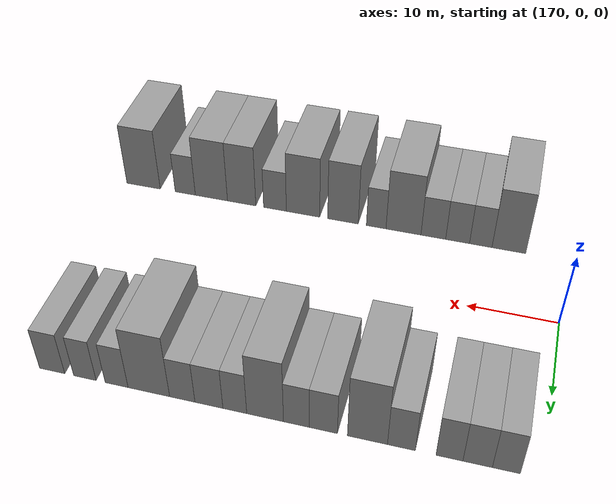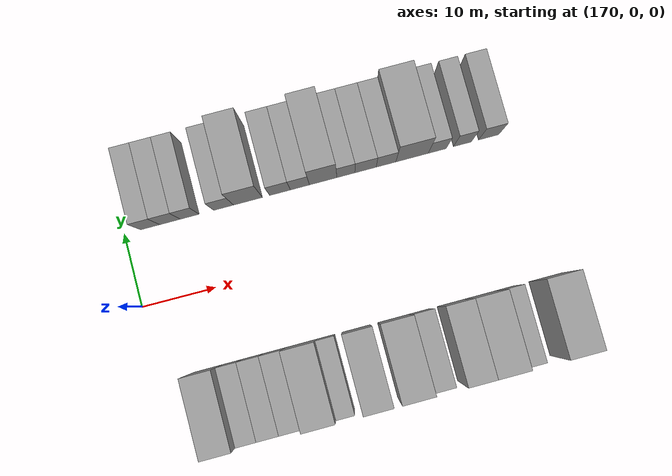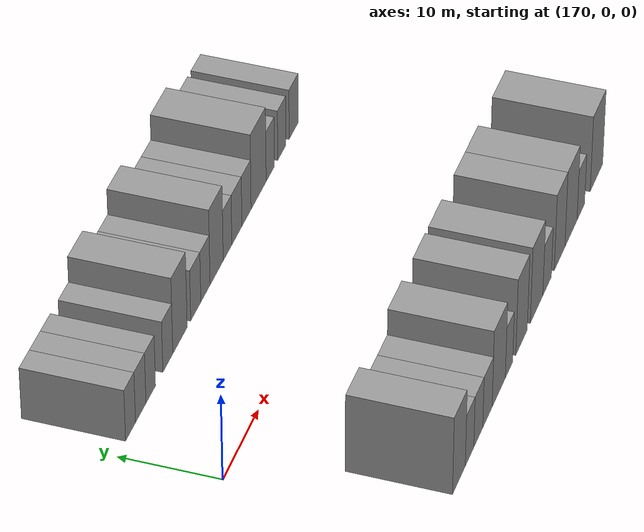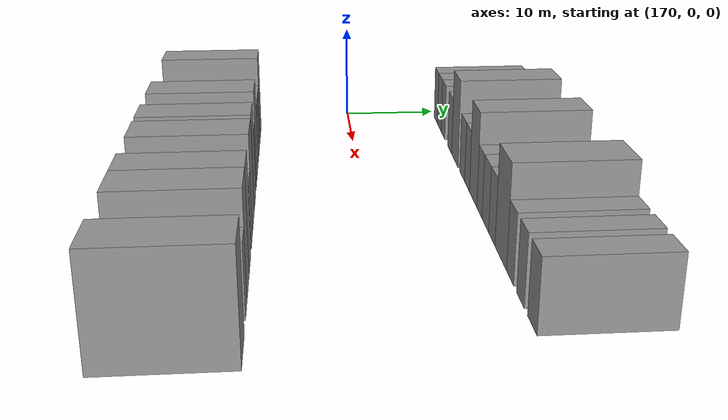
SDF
<sdf version="1.6">
 <world name="default">
  <model name="building_46">
   <static>1</static>
   <pose>173.5392 15.0000 0 0.000000 0.000000 1.570796</pose>
   <link name="link">
    <pose>0 0 3.00 0 0 0</pose>
    <collision name="collision"><geometry><box><size>10.0000 2.6291 6.0000</size></box></geometry></collision>
    <visual name="visual">
     <cast_shadows>0</cast_shadows>
     <geometry><box><size>10.0000 2.6291 6.0000</size></box></geometry>
     <material>
      <script>
       <uri>model://grey_wall/materials/scripts</uri>
       <uri>model://grey_wall/materials/textures</uri>
       <name>vrc/grey_wall</name>
      </script>
     </material>
    </visual>
   </link>
  </model>
  <model name="building_47">
   <static>1</static>
   <pose>176.2488 15.0000 0 0.000000 0.000000 1.570796</pose>
   <link name="link">
    <pose>0 0 3.00 0 0 0</pose>
    <collision name="collision"><geometry><box><size>10.0000 2.7902 6.0000</size></box></geometry></collision>
    <visual name="visual">
     <cast_shadows>0</cast_shadows>
     <geometry><box><size>10.0000 2.7902 6.0000</size></box></geometry>
     <material>
      <script>
       <uri>model://grey_wall/materials/scripts</uri>
       <uri>model://grey_wall/materials/textures</uri>
       <name>vrc/grey_wall</name>
      </script>
     </material>
    </visual>
   </link>
  </model>
  <model name="building_48">
   <static>1</static>
   <pose>178.9324 15.0000 0 0.000000 0.000000 1.570796</pose>
   <link name="link">
    <pose>0 0 3.00 0 0 0</pose>
    <collision name="collision"><geometry><box><size>10.0000 2.5769 6.0000</size></box></geometry></collision>
    <visual name="visual">
     <cast_shadows>0</cast_shadows>
     <geometry><box><size>10.0000 2.5769 6.0000</size></box></geometry>
     <material>
      <script>
       <uri>model://grey_wall/materials/scripts</uri>
       <uri>model://grey_wall/materials/textures</uri>
       <name>vrc/grey_wall</name>
      </script>
     </material>
    </visual>
   </link>
  </model>
  <model name="building_49">
   <static>1</static>
   <pose>183.5829 15.0000 0 0.000000 0.000000 1.570796</pose>
   <link name="link">
    <pose>0 0 3.00 0 0 0</pose>
    <collision name="collision"><geometry><box><size>10.0000 2.7243 6.0000</size></box></geometry></collision>
    <visual name="visual">
     <cast_shadows>0</cast_shadows>
     <geometry><box><size>10.0000 2.7243 6.0000</size></box></geometry>
     <material>
      <script>
       <uri>model://grey_wall/materials/scripts</uri>
       <uri>model://grey_wall/materials/textures</uri>
       <name>vrc/grey_wall</name>
      </script>
     </material>
    </visual>
   </link>
  </model>
  <model name="building_50">
   <static>1</static>
   <pose>186.9273 15.0000 0 0.000000 0.000000 1.570796</pose>
   <link name="link">
    <pose>0 0 4.50 0 0 0</pose>
    <collision name="collision"><geometry><box><size>10.0000 3.9645 9.0000</size></box></geometry></collision>
    <visual name="visual">
     <cast_shadows>0</cast_shadows>
     <geometry><box><size>10.0000 3.9645 9.0000</size></box></geometry>
     <material>
      <script>
       <uri>model://grey_wall/materials/scripts</uri>
       <uri>model://grey_wall/materials/textures</uri>
       <name>vrc/grey_wall</name>
      </script>
     </material>
    </visual>
   </link>
  </model>
  <model name="building_51">
   <static>1</static>
   <pose>191.3352 15.0000 0 0.000000 0.000000 1.570796</pose>
   <link name="link">
    <pose>0 0 3.00 0 0 0</pose>
    <collision name="collision"><geometry><box><size>10.0000 2.8514 6.0000</size></box></geometry></collision>
    <visual name="visual">
     <cast_shadows>0</cast_shadows>
     <geometry><box><size>10.0000 2.8514 6.0000</size></box></geometry>
     <material>
      <script>
       <uri>model://grey_wall/materials/scripts</uri>
       <uri>model://grey_wall/materials/textures</uri>
       <name>vrc/grey_wall</name>
      </script>
     </material>
    </visual>
   </link>
  </model>
  <model name="building_52">
   <static>1</static>
   <pose>194.0658 15.0000 0 0.000000 0.000000 1.570796</pose>
   <link name="link">
    <pose>0 0 3.00 0 0 0</pose>
    <collision name="collision"><geometry><box><size>10.0000 2.6098 6.0000</size></box></geometry></collision>
    <visual name="visual">
     <cast_shadows>0</cast_shadows>
     <geometry><box><size>10.0000 2.6098 6.0000</size></box></geometry>
     <material>
      <script>
       <uri>model://grey_wall/materials/scripts</uri>
       <uri>model://grey_wall/materials/textures</uri>
       <name>vrc/grey_wall</name>
      </script>
     </material>
    </visual>
   </link>
  </model>
  <model name="building_53">
   <static>1</static>
   <pose>197.2658 15.0000 0 0.000000 0.000000 1.570796</pose>
   <link name="link">
    <pose>0 0 4.50 0 0 0</pose>
    <collision name="collision"><geometry><box><size>10.0000 3.7900 9.0000</size></box></geometry></collision>
    <visual name="visual">
     <cast_shadows>0</cast_shadows>
     <geometry><box><size>10.0000 3.7900 9.0000</size></box></geometry>
     <material>
      <script>
       <uri>model://grey_wall/materials/scripts</uri>
       <uri>model://grey_wall/materials/textures</uri>
       <name>vrc/grey_wall</name>
      </script>
     </material>
    </visual>
   </link>
  </model>
  <model name="building_54">
   <static>1</static>
   <pose>200.4045 15.0000 0 0.000000 0.000000 1.570796</pose>
   <link name="link">
    <pose>0 0 3.00 0 0 0</pose>
    <collision name="collision"><geometry><box><size>10.0000 2.4874 6.0000</size></box></geometry></collision>
    <visual name="visual">
     <cast_shadows>0</cast_shadows>
     <geometry><box><size>10.0000 2.4874 6.0000</size></box></geometry>
     <material>
      <script>
       <uri>model://grey_wall/materials/scripts</uri>
       <uri>model://grey_wall/materials/textures</uri>
       <name>vrc/grey_wall</name>
      </script>
     </material>
    </visual>
   </link>
  </model>
  <model name="building_55">
   <static>1</static>
   <pose>203.1226 15.0000 0 0.000000 0.000000 1.570796</pose>
   <link name="link">
    <pose>0 0 3.00 0 0 0</pose>
    <collision name="collision"><geometry><box><size>10.0000 2.9488 6.0000</size></box></geometry></collision>
    <visual name="visual">
     <cast_shadows>0</cast_shadows>
     <geometry><box><size>10.0000 2.9488 6.0000</size></box></geometry>
     <material>
      <script>
       <uri>model://grey_wall/materials/scripts</uri>
       <uri>model://grey_wall/materials/textures</uri>
       <name>vrc/grey_wall</name>
      </script>
     </material>
    </visual>
   </link>
  </model>
  <model name="building_56">
   <static>1</static>
   <pose>205.9491 15.0000 0 0.000000 0.000000 1.570796</pose>
   <link name="link">
    <pose>0 0 3.00 0 0 0</pose>
    <collision name="collision"><geometry><box><size>10.0000 2.7042 6.0000</size></box></geometry></collision>
    <visual name="visual">
     <cast_shadows>0</cast_shadows>
     <geometry><box><size>10.0000 2.7042 6.0000</size></box></geometry>
     <material>
      <script>
       <uri>model://grey_wall/materials/scripts</uri>
       <uri>model://grey_wall/materials/textures</uri>
       <name>vrc/grey_wall</name>
      </script>
     </material>
    </visual>
   </link>
  </model>
  <model name="building_57">
   <static>1</static>
   <pose>209.5503 15.0000 0 0.000000 0.000000 1.570796</pose>
   <link name="link">
    <pose>0 0 4.50 0 0 0</pose>
    <collision name="collision"><geometry><box><size>10.0000 4.4981 9.0000</size></box></geometry></collision>
    <visual name="visual">
     <cast_shadows>0</cast_shadows>
     <geometry><box><size>10.0000 4.4981 9.0000</size></box></geometry>
     <material>
      <script>
       <uri>model://grey_wall/materials/scripts</uri>
       <uri>model://grey_wall/materials/textures</uri>
       <name>vrc/grey_wall</name>
      </script>
     </material>
    </visual>
   </link>
  </model>
  <model name="building_58">
   <static>1</static>
   <pose>213.0587 15.0000 0 0.000000 0.000000 1.570796</pose>
   <link name="link">
    <pose>0 0 3.00 0 0 0</pose>
    <collision name="collision"><geometry><box><size>10.0000 2.5187 6.0000</size></box></geometry></collision>
    <visual name="visual">
     <cast_shadows>0</cast_shadows>
     <geometry><box><size>10.0000 2.5187 6.0000</size></box></geometry>
     <material>
      <script>
       <uri>model://grey_wall/materials/scripts</uri>
       <uri>model://grey_wall/materials/textures</uri>
       <name>vrc/grey_wall</name>
      </script>
     </material>
    </visual>
   </link>
  </model>
  <model name="building_59">
   <static>1</static>
   <pose>216.5635 15.0000 0 0.000000 0.000000 1.570796</pose>
   <link name="link">
    <pose>0 0 3.00 0 0 0</pose>
    <collision name="collision"><geometry><box><size>10.0000 2.4909 6.0000</size></box></geometry></collision>
    <visual name="visual">
     <cast_shadows>0</cast_shadows>
     <geometry><box><size>10.0000 2.4909 6.0000</size></box></geometry>
     <material>
      <script>
       <uri>model://grey_wall/materials/scripts</uri>
       <uri>model://grey_wall/materials/textures</uri>
       <name>vrc/grey_wall</name>
      </script>
     </material>
    </visual>
   </link>
  </model>
  <model name="building_60">
   <static>1</static>
   <pose>220.2247 15.0000 0 0.000000 0.000000 1.570796</pose>
   <link name="link">
    <pose>0 0 3.00 0 0 0</pose>
    <collision name="collision"><geometry><box><size>10.0000 2.8314 6.0000</size></box></geometry></collision>
    <visual name="visual">
     <cast_shadows>0</cast_shadows>
     <geometry><box><size>10.0000 2.8314 6.0000</size></box></geometry>
     <material>
      <script>
       <uri>model://grey_wall/materials/scripts</uri>
       <uri>model://grey_wall/materials/textures</uri>
       <name>vrc/grey_wall</name>
      </script>
     </material>
    </visual>
   </link>
  </model>
  <model name="building_100">
   <static>1</static>
   <pose>176.4670 -15.0000 0 0.000000 0.000000 1.570796</pose>
   <link name="link">
    <pose>0 0 4.50 0 0 0</pose>
    <collision name="collision"><geometry><box><size>10.0000 3.9397 9.0000</size></box></geometry></collision>
    <visual name="visual">
     <cast_shadows>0</cast_shadows>
     <geometry><box><size>10.0000 3.9397 9.0000</size></box></geometry>
     <material>
      <script>
       <uri>model://grey_wall/materials/scripts</uri>
       <uri>model://grey_wall/materials/textures</uri>
       <name>vrc/grey_wall</name>
      </script>
     </material>
    </visual>
   </link>
  </model>
  <model name="building_101">
   <static>1</static>
   <pose>179.7580 -15.0000 0 0.000000 0.000000 1.570796</pose>
   <link name="link">
    <pose>0 0 3.00 0 0 0</pose>
    <collision name="collision"><geometry><box><size>10.0000 2.6423 6.0000</size></box></geometry></collision>
    <visual name="visual">
     <cast_shadows>0</cast_shadows>
     <geometry><box><size>10.0000 2.6423 6.0000</size></box></geometry>
     <material>
      <script>
       <uri>model://grey_wall/materials/scripts</uri>
       <uri>model://grey_wall/materials/textures</uri>
       <name>vrc/grey_wall</name>
      </script>
     </material>
    </visual>
   </link>
  </model>
  <model name="building_102">
   <static>1</static>
   <pose>182.4958 -15.0000 0 0.000000 0.000000 1.570796</pose>
   <link name="link">
    <pose>0 0 3.00 0 0 0</pose>
    <collision name="collision"><geometry><box><size>10.0000 2.8333 6.0000</size></box></geometry></collision>
    <visual name="visual">
     <cast_shadows>0</cast_shadows>
     <geometry><box><size>10.0000 2.8333 6.0000</size></box></geometry>
     <material>
      <script>
       <uri>model://grey_wall/materials/scripts</uri>
       <uri>model://grey_wall/materials/textures</uri>
       <name>vrc/grey_wall</name>
      </script>
     </material>
    </visual>
   </link>
  </model>
  <model name="building_103">
   <static>1</static>
   <pose>185.3948 -15.0000 0 0.000000 0.000000 1.570796</pose>
   <link name="link">
    <pose>0 0 3.00 0 0 0</pose>
    <collision name="collision"><geometry><box><size>10.0000 2.9648 6.0000</size></box></geometry></collision>
    <visual name="visual">
     <cast_shadows>0</cast_shadows>
     <geometry><box><size>10.0000 2.9648 6.0000</size></box></geometry>
     <material>
      <script>
       <uri>model://grey_wall/materials/scripts</uri>
       <uri>model://grey_wall/materials/textures</uri>
       <name>vrc/grey_wall</name>
      </script>
     </material>
    </visual>
   </link>
  </model>
  <model name="building_104">
   <static>1</static>
   <pose>188.9987 -15.0000 0 0.000000 0.000000 1.570796</pose>
   <link name="link">
    <pose>0 0 4.50 0 0 0</pose>
    <collision name="collision"><geometry><box><size>10.0000 4.2431 9.0000</size></box></geometry></collision>
    <visual name="visual">
     <cast_shadows>0</cast_shadows>
     <geometry><box><size>10.0000 4.2431 9.0000</size></box></geometry>
     <material>
      <script>
       <uri>model://grey_wall/materials/scripts</uri>
       <uri>model://grey_wall/materials/textures</uri>
       <name>vrc/grey_wall</name>
      </script>
     </material>
    </visual>
   </link>
  </model>
  <model name="building_105">
   <static>1</static>
   <pose>192.3229 -15.0000 0 0.000000 0.000000 1.570796</pose>
   <link name="link">
    <pose>0 0 3.00 0 0 0</pose>
    <collision name="collision"><geometry><box><size>10.0000 2.4051 6.0000</size></box></geometry></collision>
    <visual name="visual">
     <cast_shadows>0</cast_shadows>
     <geometry><box><size>10.0000 2.4051 6.0000</size></box></geometry>
     <material>
      <script>
       <uri>model://grey_wall/materials/scripts</uri>
       <uri>model://grey_wall/materials/textures</uri>
       <name>vrc/grey_wall</name>
      </script>
     </material>
    </visual>
   </link>
  </model>
  <model name="building_106">
   <static>1</static>
   <pose>196.4271 -15.0000 0 0.000000 0.000000 1.570796</pose>
   <link name="link">
    <pose>0 0 4.50 0 0 0</pose>
    <collision name="collision"><geometry><box><size>10.0000 3.8033 9.0000</size></box></geometry></collision>
    <visual name="visual">
     <cast_shadows>0</cast_shadows>
     <geometry><box><size>10.0000 3.8033 9.0000</size></box></geometry>
     <material>
      <script>
       <uri>model://grey_wall/materials/scripts</uri>
       <uri>model://grey_wall/materials/textures</uri>
       <name>vrc/grey_wall</name>
      </script>
     </material>
    </visual>
   </link>
  </model>
  <model name="building_107">
   <static>1</static>
   <pose>201.4361 -15.0000 0 0.000000 0.000000 1.570796</pose>
   <link name="link">
    <pose>0 0 4.50 0 0 0</pose>
    <collision name="collision"><geometry><box><size>10.0000 4.2147 9.0000</size></box></geometry></collision>
    <visual name="visual">
     <cast_shadows>0</cast_shadows>
     <geometry><box><size>10.0000 4.2147 9.0000</size></box></geometry>
     <material>
      <script>
       <uri>model://grey_wall/materials/scripts</uri>
       <uri>model://grey_wall/materials/textures</uri>
       <name>vrc/grey_wall</name>
      </script>
     </material>
    </visual>
   </link>
  </model>
  <model name="building_108">
   <static>1</static>
   <pose>204.9939 -15.0000 0 0.000000 0.000000 1.570796</pose>
   <link name="link">
    <pose>0 0 3.00 0 0 0</pose>
    <collision name="collision"><geometry><box><size>10.0000 2.9010 6.0000</size></box></geometry></collision>
    <visual name="visual">
     <cast_shadows>0</cast_shadows>
     <geometry><box><size>10.0000 2.9010 6.0000</size></box></geometry>
     <material>
      <script>
       <uri>model://grey_wall/materials/scripts</uri>
       <uri>model://grey_wall/materials/textures</uri>
       <name>vrc/grey_wall</name>
      </script>
     </material>
    </visual>
   </link>
  </model>
  <model name="building_109">
   <static>1</static>
   <pose>209.2825 -15.0000 0 0.000000 0.000000 1.570796</pose>
   <link name="link">
    <pose>0 0 4.50 0 0 0</pose>
    <collision name="collision"><geometry><box><size>10.0000 3.6761 9.0000</size></box></geometry></collision>
    <visual name="visual">
     <cast_shadows>0</cast_shadows>
     <geometry><box><size>10.0000 3.6761 9.0000</size></box></geometry>
     <material>
      <script>
       <uri>model://grey_wall/materials/scripts</uri>
       <uri>model://grey_wall/materials/textures</uri>
       <name>vrc/grey_wall</name>
      </script>
     </material>
    </visual>
   </link>
  </model>
  <model name="building_110">
   <static>1</static>
   <pose>213.2285 -15.0000 0 0.000000 0.000000 1.570796</pose>
   <link name="link">
    <pose>0 0 4.50 0 0 0</pose>
    <collision name="collision"><geometry><box><size>10.0000 4.2161 9.0000</size></box></geometry></collision>
    <visual name="visual">
     <cast_shadows>0</cast_shadows>
     <geometry><box><size>10.0000 4.2161 9.0000</size></box></geometry>
     <material>
      <script>
       <uri>model://grey_wall/materials/scripts</uri>
       <uri>model://grey_wall/materials/textures</uri>
       <name>vrc/grey_wall</name>
      </script>
     </material>
    </visual>
   </link>
  </model>
  <model name="building_111">
   <static>1</static>
   <pose>216.6727 -15.0000 0 0.000000 0.000000 1.570796</pose>
   <link name="link">
    <pose>0 0 3.00 0 0 0</pose>
    <collision name="collision"><geometry><box><size>10.0000 2.6724 6.0000</size></box></geometry></collision>
    <visual name="visual">
     <cast_shadows>0</cast_shadows>
     <geometry><box><size>10.0000 2.6724 6.0000</size></box></geometry>
     <material>
      <script>
       <uri>model://grey_wall/materials/scripts</uri>
       <uri>model://grey_wall/materials/textures</uri>
       <name>vrc/grey_wall</name>
      </script>
     </material>
    </visual>
   </link>
  </model>
  <model name="building_112">
   <static>1</static>
   <pose>222.2518 -15.0000 0 0.000000 0.000000 1.570796</pose>
   <link name="link">
    <pose>0 0 4.50 0 0 0</pose>
    <collision name="collision"><geometry><box><size>10.0000 4.4858 9.0000</size></box></geometry></collision>
    <visual name="visual">
     <cast_shadows>0</cast_shadows>
     <geometry><box><size>10.0000 4.4858 9.0000</size></box></geometry>
     <material>
      <script>
       <uri>model://grey_wall/materials/scripts</uri>
       <uri>model://grey_wall/materials/textures</uri>
       <name>vrc/grey_wall</name>
      </script>
     </material>
    </visual>
   </link>
  </model>
 </world>
</sdf>
